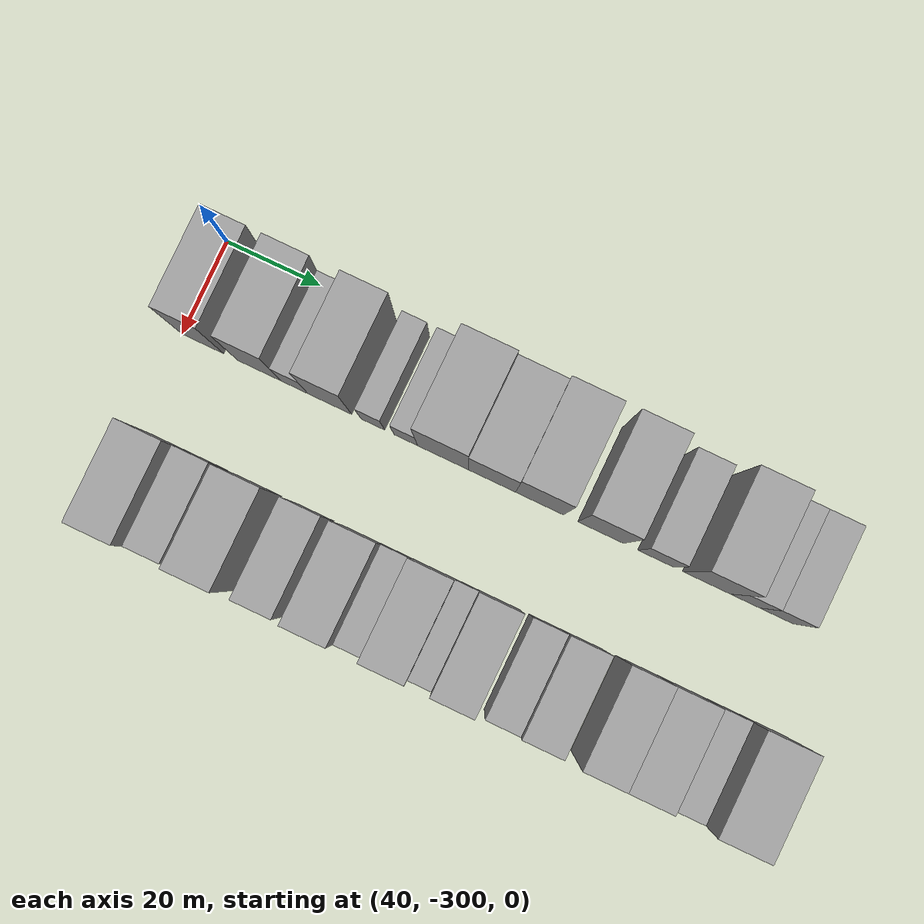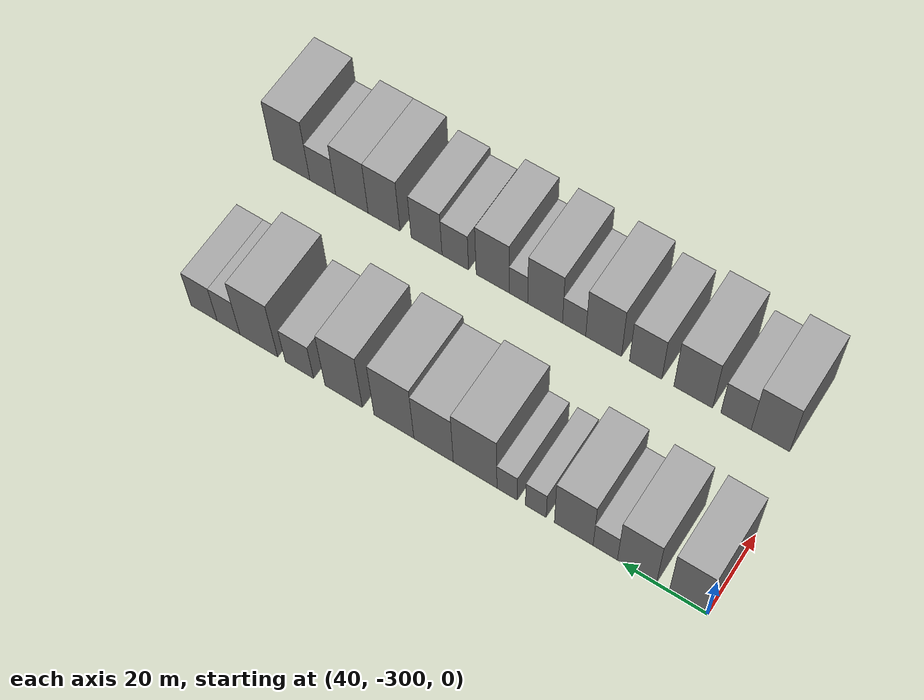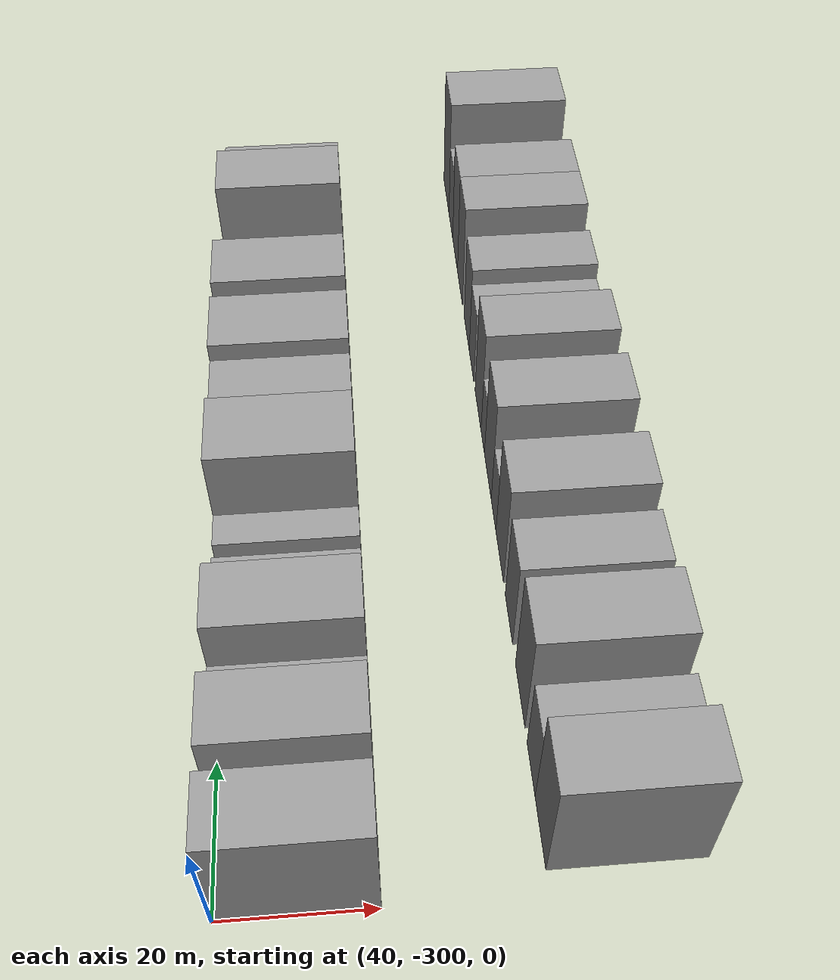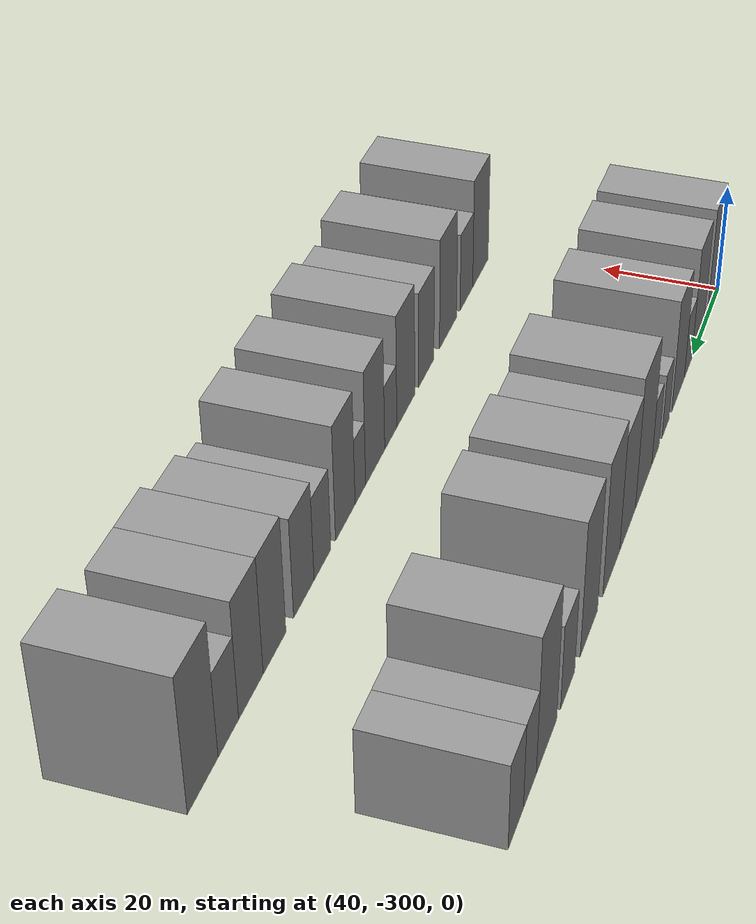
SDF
<sdf version="1.6">
 <world name="default">
  <model name="building_1">
   <static>1</static>
   <pose>50.0000 -295.5026 0 0.000000 0.000000 0.000000</pose>
   <link name="link">
    <pose>0 0 10.50 0 0 0</pose>
    <collision name="collision"><geometry><box><size>20.0000 8.9949 21.0000</size></box></geometry></collision>
    <visual name="visual">
     <cast_shadows>0</cast_shadows>
     <geometry><box><size>20.0000 8.9949 21.0000</size></box></geometry>
     <material>
      <script>
       <uri>model://grey_wall/materials/scripts</uri>
       <uri>model://grey_wall/materials/textures</uri>
       <name>vrc/grey_wall</name>
      </script>
     </material>
    </visual>
   </link>
  </model>
  <model name="building_2">
   <static>1</static>
   <pose>50.0000 -283.3810 0 0.000000 0.000000 0.000000</pose>
   <link name="link">
    <pose>0 0 10.50 0 0 0</pose>
    <collision name="collision"><geometry><box><size>20.0000 9.2483 21.0000</size></box></geometry></collision>
    <visual name="visual">
     <cast_shadows>0</cast_shadows>
     <geometry><box><size>20.0000 9.2483 21.0000</size></box></geometry>
     <material>
      <script>
       <uri>model://grey_wall/materials/scripts</uri>
       <uri>model://grey_wall/materials/textures</uri>
       <name>vrc/grey_wall</name>
      </script>
     </material>
    </visual>
   </link>
  </model>
  <model name="building_3">
   <static>1</static>
   <pose>50.0000 -275.8437 0 0.000000 0.000000 0.000000</pose>
   <link name="link">
    <pose>0 0 6.00 0 0 0</pose>
    <collision name="collision"><geometry><box><size>20.0000 5.8264 12.0000</size></box></geometry></collision>
    <visual name="visual">
     <cast_shadows>0</cast_shadows>
     <geometry><box><size>20.0000 5.8264 12.0000</size></box></geometry>
     <material>
      <script>
       <uri>model://grey_wall/materials/scripts</uri>
       <uri>model://grey_wall/materials/textures</uri>
       <name>vrc/grey_wall</name>
      </script>
     </material>
    </visual>
   </link>
  </model>
  <model name="building_4">
   <static>1</static>
   <pose>50.0000 -268.2527 0 0.000000 0.000000 0.000000</pose>
   <link name="link">
    <pose>0 0 10.50 0 0 0</pose>
    <collision name="collision"><geometry><box><size>20.0000 9.3556 21.0000</size></box></geometry></collision>
    <visual name="visual">
     <cast_shadows>0</cast_shadows>
     <geometry><box><size>20.0000 9.3556 21.0000</size></box></geometry>
     <material>
      <script>
       <uri>model://grey_wall/materials/scripts</uri>
       <uri>model://grey_wall/materials/textures</uri>
       <name>vrc/grey_wall</name>
      </script>
     </material>
    </visual>
   </link>
  </model>
  <model name="building_5">
   <static>1</static>
   <pose>50.0000 -259.0420 0 0.000000 0.000000 0.000000</pose>
   <link name="link">
    <pose>0 0 6.00 0 0 0</pose>
    <collision name="collision"><geometry><box><size>20.0000 5.0658 12.0000</size></box></geometry></collision>
    <visual name="visual">
     <cast_shadows>0</cast_shadows>
     <geometry><box><size>20.0000 5.0658 12.0000</size></box></geometry>
     <material>
      <script>
       <uri>model://grey_wall/materials/scripts</uri>
       <uri>model://grey_wall/materials/textures</uri>
       <name>vrc/grey_wall</name>
      </script>
     </material>
    </visual>
   </link>
  </model>
  <model name="building_6">
   <static>1</static>
   <pose>50.0000 -251.9958 0 0.000000 0.000000 0.000000</pose>
   <link name="link">
    <pose>0 0 6.00 0 0 0</pose>
    <collision name="collision"><geometry><box><size>20.0000 5.0266 12.0000</size></box></geometry></collision>
    <visual name="visual">
     <cast_shadows>0</cast_shadows>
     <geometry><box><size>20.0000 5.0266 12.0000</size></box></geometry>
     <material>
      <script>
       <uri>model://grey_wall/materials/scripts</uri>
       <uri>model://grey_wall/materials/textures</uri>
       <name>vrc/grey_wall</name>
      </script>
     </material>
    </visual>
   </link>
  </model>
  <model name="building_7">
   <static>1</static>
   <pose>50.0000 -244.0450 0 0.000000 0.000000 0.000000</pose>
   <link name="link">
    <pose>0 0 12.00 0 0 0</pose>
    <collision name="collision"><geometry><box><size>20.0000 10.8750 24.0000</size></box></geometry></collision>
    <visual name="visual">
     <cast_shadows>0</cast_shadows>
     <geometry><box><size>20.0000 10.8750 24.0000</size></box></geometry>
     <material>
      <script>
       <uri>model://grey_wall/materials/scripts</uri>
       <uri>model://grey_wall/materials/textures</uri>
       <name>vrc/grey_wall</name>
      </script>
     </material>
    </visual>
   </link>
  </model>
  <model name="building_8">
   <static>1</static>
   <pose>50.0000 -233.6222 0 0.000000 0.000000 0.000000</pose>
   <link name="link">
    <pose>0 0 10.50 0 0 0</pose>
    <collision name="collision"><geometry><box><size>20.0000 9.9707 21.0000</size></box></geometry></collision>
    <visual name="visual">
     <cast_shadows>0</cast_shadows>
     <geometry><box><size>20.0000 9.9707 21.0000</size></box></geometry>
     <material>
      <script>
       <uri>model://grey_wall/materials/scripts</uri>
       <uri>model://grey_wall/materials/textures</uri>
       <name>vrc/grey_wall</name>
      </script>
     </material>
    </visual>
   </link>
  </model>
  <model name="building_9">
   <static>1</static>
   <pose>50.0000 -223.5442 0 0.000000 0.000000 0.000000</pose>
   <link name="link">
    <pose>0 0 12.00 0 0 0</pose>
    <collision name="collision"><geometry><box><size>20.0000 10.1853 24.0000</size></box></geometry></collision>
    <visual name="visual">
     <cast_shadows>0</cast_shadows>
     <geometry><box><size>20.0000 10.1853 24.0000</size></box></geometry>
     <material>
      <script>
       <uri>model://grey_wall/materials/scripts</uri>
       <uri>model://grey_wall/materials/textures</uri>
       <name>vrc/grey_wall</name>
      </script>
     </material>
    </visual>
   </link>
  </model>
  <model name="building_10">
   <static>1</static>
   <pose>50.0000 -210.5906 0 0.000000 0.000000 0.000000</pose>
   <link name="link">
    <pose>0 0 12.00 0 0 0</pose>
    <collision name="collision"><geometry><box><size>20.0000 9.7218 24.0000</size></box></geometry></collision>
    <visual name="visual">
     <cast_shadows>0</cast_shadows>
     <geometry><box><size>20.0000 9.7218 24.0000</size></box></geometry>
     <material>
      <script>
       <uri>model://grey_wall/materials/scripts</uri>
       <uri>model://grey_wall/materials/textures</uri>
       <name>vrc/grey_wall</name>
      </script>
     </material>
    </visual>
   </link>
  </model>
  <model name="building_11">
   <static>1</static>
   <pose>50.0000 -198.9973 0 0.000000 0.000000 0.000000</pose>
   <link name="link">
    <pose>0 0 7.50 0 0 0</pose>
    <collision name="collision"><geometry><box><size>20.0000 7.4648 15.0000</size></box></geometry></collision>
    <visual name="visual">
     <cast_shadows>0</cast_shadows>
     <geometry><box><size>20.0000 7.4648 15.0000</size></box></geometry>
     <material>
      <script>
       <uri>model://grey_wall/materials/scripts</uri>
       <uri>model://grey_wall/materials/textures</uri>
       <name>vrc/grey_wall</name>
      </script>
     </material>
    </visual>
   </link>
  </model>
  <model name="building_12">
   <static>1</static>
   <pose>50.0000 -188.2195 0 0.000000 0.000000 0.000000</pose>
   <link name="link">
    <pose>0 0 12.00 0 0 0</pose>
    <collision name="collision"><geometry><box><size>20.0000 10.0909 24.0000</size></box></geometry></collision>
    <visual name="visual">
     <cast_shadows>0</cast_shadows>
     <geometry><box><size>20.0000 10.0909 24.0000</size></box></geometry>
     <material>
      <script>
       <uri>model://grey_wall/materials/scripts</uri>
       <uri>model://grey_wall/materials/textures</uri>
       <name>vrc/grey_wall</name>
      </script>
     </material>
    </visual>
   </link>
  </model>
  <model name="building_13">
   <static>1</static>
   <pose>50.0000 -180.0950 0 0.000000 0.000000 0.000000</pose>
   <link name="link">
    <pose>0 0 7.50 0 0 0</pose>
    <collision name="collision"><geometry><box><size>20.0000 6.1581 15.0000</size></box></geometry></collision>
    <visual name="visual">
     <cast_shadows>0</cast_shadows>
     <geometry><box><size>20.0000 6.1581 15.0000</size></box></geometry>
     <material>
      <script>
       <uri>model://grey_wall/materials/scripts</uri>
       <uri>model://grey_wall/materials/textures</uri>
       <name>vrc/grey_wall</name>
      </script>
     </material>
    </visual>
   </link>
  </model>
  <model name="building_14">
   <static>1</static>
   <pose>50.0000 -173.4898 0 0.000000 0.000000 0.000000</pose>
   <link name="link">
    <pose>0 0 7.50 0 0 0</pose>
    <collision name="collision"><geometry><box><size>20.0000 7.0522 15.0000</size></box></geometry></collision>
    <visual name="visual">
     <cast_shadows>0</cast_shadows>
     <geometry><box><size>20.0000 7.0522 15.0000</size></box></geometry>
     <material>
      <script>
       <uri>model://grey_wall/materials/scripts</uri>
       <uri>model://grey_wall/materials/textures</uri>
       <name>vrc/grey_wall</name>
      </script>
     </material>
    </visual>
   </link>
  </model>
  <model name="building_61">
   <static>1</static>
   <pose>90.0000 -292.3551 0 0.000000 0.000000 0.000000</pose>
   <link name="link">
    <pose>0 0 10.50 0 0 0</pose>
    <collision name="collision"><geometry><box><size>20.0000 9.2899 21.0000</size></box></geometry></collision>
    <visual name="visual">
     <cast_shadows>0</cast_shadows>
     <geometry><box><size>20.0000 9.2899 21.0000</size></box></geometry>
     <material>
      <script>
       <uri>model://grey_wall/materials/scripts</uri>
       <uri>model://grey_wall/materials/textures</uri>
       <name>vrc/grey_wall</name>
      </script>
     </material>
    </visual>
   </link>
  </model>
  <model name="building_62">
   <static>1</static>
   <pose>90.0000 -284.0336 0 0.000000 0.000000 0.000000</pose>
   <link name="link">
    <pose>0 0 7.50 0 0 0</pose>
    <collision name="collision"><geometry><box><size>20.0000 7.3530 15.0000</size></box></geometry></collision>
    <visual name="visual">
     <cast_shadows>0</cast_shadows>
     <geometry><box><size>20.0000 7.3530 15.0000</size></box></geometry>
     <material>
      <script>
       <uri>model://grey_wall/materials/scripts</uri>
       <uri>model://grey_wall/materials/textures</uri>
       <name>vrc/grey_wall</name>
      </script>
     </material>
    </visual>
   </link>
  </model>
  <model name="building_63">
   <static>1</static>
   <pose>90.0000 -273.5886 0 0.000000 0.000000 0.000000</pose>
   <link name="link">
    <pose>0 0 10.50 0 0 0</pose>
    <collision name="collision"><geometry><box><size>20.0000 9.5371 21.0000</size></box></geometry></collision>
    <visual name="visual">
     <cast_shadows>0</cast_shadows>
     <geometry><box><size>20.0000 9.5371 21.0000</size></box></geometry>
     <material>
      <script>
       <uri>model://grey_wall/materials/scripts</uri>
       <uri>model://grey_wall/materials/textures</uri>
       <name>vrc/grey_wall</name>
      </script>
     </material>
    </visual>
   </link>
  </model>
  <model name="building_64">
   <static>1</static>
   <pose>90.0000 -261.7767 0 0.000000 0.000000 0.000000</pose>
   <link name="link">
    <pose>0 0 9.00 0 0 0</pose>
    <collision name="collision"><geometry><box><size>20.0000 8.0865 18.0000</size></box></geometry></collision>
    <visual name="visual">
     <cast_shadows>0</cast_shadows>
     <geometry><box><size>20.0000 8.0865 18.0000</size></box></geometry>
     <material>
      <script>
       <uri>model://grey_wall/materials/scripts</uri>
       <uri>model://grey_wall/materials/textures</uri>
       <name>vrc/grey_wall</name>
      </script>
     </material>
    </visual>
   </link>
  </model>
  <model name="building_65">
   <static>1</static>
   <pose>90.0000 -251.2065 0 0.000000 0.000000 0.000000</pose>
   <link name="link">
    <pose>0 0 10.50 0 0 0</pose>
    <collision name="collision"><geometry><box><size>20.0000 9.0539 21.0000</size></box></geometry></collision>
    <visual name="visual">
     <cast_shadows>0</cast_shadows>
     <geometry><box><size>20.0000 9.0539 21.0000</size></box></geometry>
     <material>
      <script>
       <uri>model://grey_wall/materials/scripts</uri>
       <uri>model://grey_wall/materials/textures</uri>
       <name>vrc/grey_wall</name>
      </script>
     </material>
    </visual>
   </link>
  </model>
  <model name="building_66">
   <static>1</static>
   <pose>90.0000 -243.7180 0 0.000000 0.000000 0.000000</pose>
   <link name="link">
    <pose>0 0 6.00 0 0 0</pose>
    <collision name="collision"><geometry><box><size>20.0000 5.9230 12.0000</size></box></geometry></collision>
    <visual name="visual">
     <cast_shadows>0</cast_shadows>
     <geometry><box><size>20.0000 5.9230 12.0000</size></box></geometry>
     <material>
      <script>
       <uri>model://grey_wall/materials/scripts</uri>
       <uri>model://grey_wall/materials/textures</uri>
       <name>vrc/grey_wall</name>
      </script>
     </material>
    </visual>
   </link>
  </model>
  <model name="building_67">
   <static>1</static>
   <pose>90.0000 -236.2722 0 0.000000 0.000000 0.000000</pose>
   <link name="link">
    <pose>0 0 10.50 0 0 0</pose>
    <collision name="collision"><geometry><box><size>20.0000 8.9688 21.0000</size></box></geometry></collision>
    <visual name="visual">
     <cast_shadows>0</cast_shadows>
     <geometry><box><size>20.0000 8.9688 21.0000</size></box></geometry>
     <material>
      <script>
       <uri>model://grey_wall/materials/scripts</uri>
       <uri>model://grey_wall/materials/textures</uri>
       <name>vrc/grey_wall</name>
      </script>
     </material>
    </visual>
   </link>
  </model>
  <model name="building_68">
   <static>1</static>
   <pose>90.0000 -229.3848 0 0.000000 0.000000 0.000000</pose>
   <link name="link">
    <pose>0 0 6.00 0 0 0</pose>
    <collision name="collision"><geometry><box><size>20.0000 4.8060 12.0000</size></box></geometry></collision>
    <visual name="visual">
     <cast_shadows>0</cast_shadows>
     <geometry><box><size>20.0000 4.8060 12.0000</size></box></geometry>
     <material>
      <script>
       <uri>model://grey_wall/materials/scripts</uri>
       <uri>model://grey_wall/materials/textures</uri>
       <name>vrc/grey_wall</name>
      </script>
     </material>
    </visual>
   </link>
  </model>
  <model name="building_69">
   <static>1</static>
   <pose>90.0000 -222.6637 0 0.000000 0.000000 0.000000</pose>
   <link name="link">
    <pose>0 0 10.50 0 0 0</pose>
    <collision name="collision"><geometry><box><size>20.0000 8.6363 21.0000</size></box></geometry></collision>
    <visual name="visual">
     <cast_shadows>0</cast_shadows>
     <geometry><box><size>20.0000 8.6363 21.0000</size></box></geometry>
     <material>
      <script>
       <uri>model://grey_wall/materials/scripts</uri>
       <uri>model://grey_wall/materials/textures</uri>
       <name>vrc/grey_wall</name>
      </script>
     </material>
    </visual>
   </link>
  </model>
  <model name="building_70">
   <static>1</static>
   <pose>90.0000 -212.8325 0 0.000000 0.000000 0.000000</pose>
   <link name="link">
    <pose>0 0 7.50 0 0 0</pose>
    <collision name="collision"><geometry><box><size>20.0000 7.0260 15.0000</size></box></geometry></collision>
    <visual name="visual">
     <cast_shadows>0</cast_shadows>
     <geometry><box><size>20.0000 7.0260 15.0000</size></box></geometry>
     <material>
      <script>
       <uri>model://grey_wall/materials/scripts</uri>
       <uri>model://grey_wall/materials/textures</uri>
       <name>vrc/grey_wall</name>
      </script>
     </material>
    </visual>
   </link>
  </model>
  <model name="building_71">
   <static>1</static>
   <pose>90.0000 -205.1941 0 0.000000 0.000000 0.000000</pose>
   <link name="link">
    <pose>0 0 9.00 0 0 0</pose>
    <collision name="collision"><geometry><box><size>20.0000 8.2509 18.0000</size></box></geometry></collision>
    <visual name="visual">
     <cast_shadows>0</cast_shadows>
     <geometry><box><size>20.0000 8.2509 18.0000</size></box></geometry>
     <material>
      <script>
       <uri>model://grey_wall/materials/scripts</uri>
       <uri>model://grey_wall/materials/textures</uri>
       <name>vrc/grey_wall</name>
      </script>
     </material>
    </visual>
   </link>
  </model>
  <model name="building_72">
   <static>1</static>
   <pose>90.0000 -193.7443 0 0.000000 0.000000 0.000000</pose>
   <link name="link">
    <pose>0 0 10.50 0 0 0</pose>
    <collision name="collision"><geometry><box><size>20.0000 8.6487 21.0000</size></box></geometry></collision>
    <visual name="visual">
     <cast_shadows>0</cast_shadows>
     <geometry><box><size>20.0000 8.6487 21.0000</size></box></geometry>
     <material>
      <script>
       <uri>model://grey_wall/materials/scripts</uri>
       <uri>model://grey_wall/materials/textures</uri>
       <name>vrc/grey_wall</name>
      </script>
     </material>
    </visual>
   </link>
  </model>
  <model name="building_73">
   <static>1</static>
   <pose>90.0000 -184.9889 0 0.000000 0.000000 0.000000</pose>
   <link name="link">
    <pose>0 0 10.50 0 0 0</pose>
    <collision name="collision"><geometry><box><size>20.0000 8.8621 21.0000</size></box></geometry></collision>
    <visual name="visual">
     <cast_shadows>0</cast_shadows>
     <geometry><box><size>20.0000 8.8621 21.0000</size></box></geometry>
     <material>
      <script>
       <uri>model://grey_wall/materials/scripts</uri>
       <uri>model://grey_wall/materials/textures</uri>
       <name>vrc/grey_wall</name>
      </script>
     </material>
    </visual>
   </link>
  </model>
  <model name="building_74">
   <static>1</static>
   <pose>90.0000 -176.9765 0 0.000000 0.000000 0.000000</pose>
   <link name="link">
    <pose>0 0 7.50 0 0 0</pose>
    <collision name="collision"><geometry><box><size>20.0000 7.1626 15.0000</size></box></geometry></collision>
    <visual name="visual">
     <cast_shadows>0</cast_shadows>
     <geometry><box><size>20.0000 7.1626 15.0000</size></box></geometry>
     <material>
      <script>
       <uri>model://grey_wall/materials/scripts</uri>
       <uri>model://grey_wall/materials/textures</uri>
       <name>vrc/grey_wall</name>
      </script>
     </material>
    </visual>
   </link>
  </model>
  <model name="building_75">
   <static>1</static>
   <pose>90.0000 -168.3043 0 0.000000 0.000000 0.000000</pose>
   <link name="link">
    <pose>0 0 12.00 0 0 0</pose>
    <collision name="collision"><geometry><box><size>20.0000 10.1817 24.0000</size></box></geometry></collision>
    <visual name="visual">
     <cast_shadows>0</cast_shadows>
     <geometry><box><size>20.0000 10.1817 24.0000</size></box></geometry>
     <material>
      <script>
       <uri>model://grey_wall/materials/scripts</uri>
       <uri>model://grey_wall/materials/textures</uri>
       <name>vrc/grey_wall</name>
      </script>
     </material>
    </visual>
   </link>
  </model>
 </world>
</sdf>
